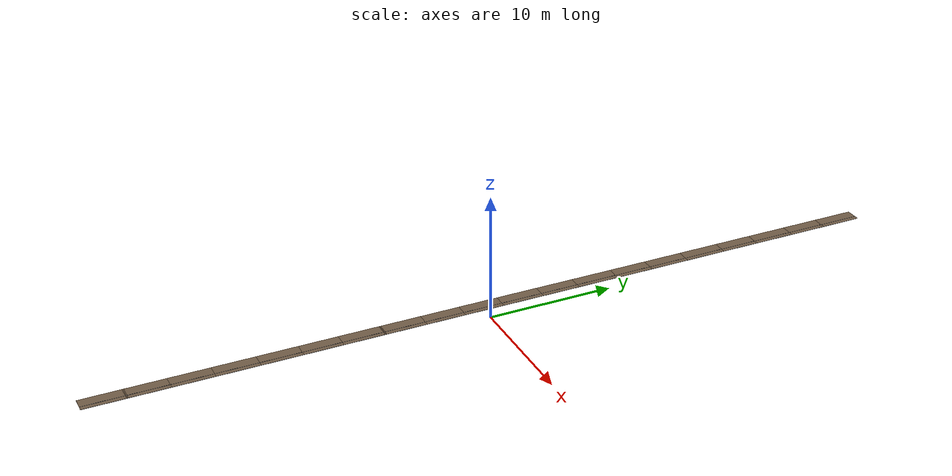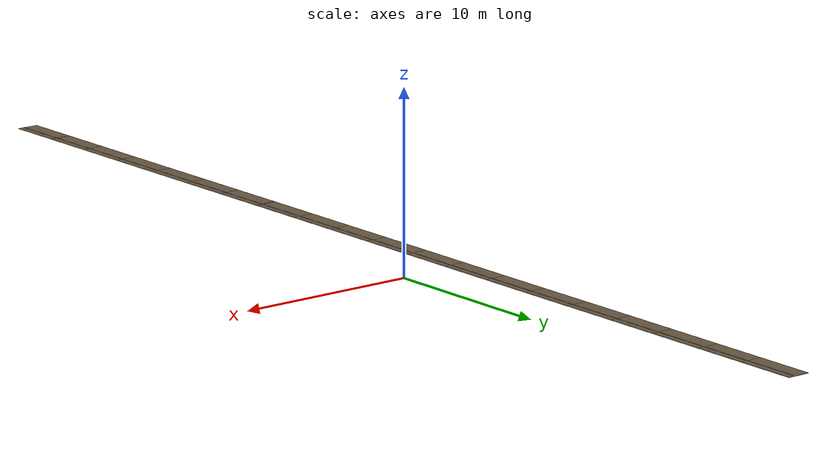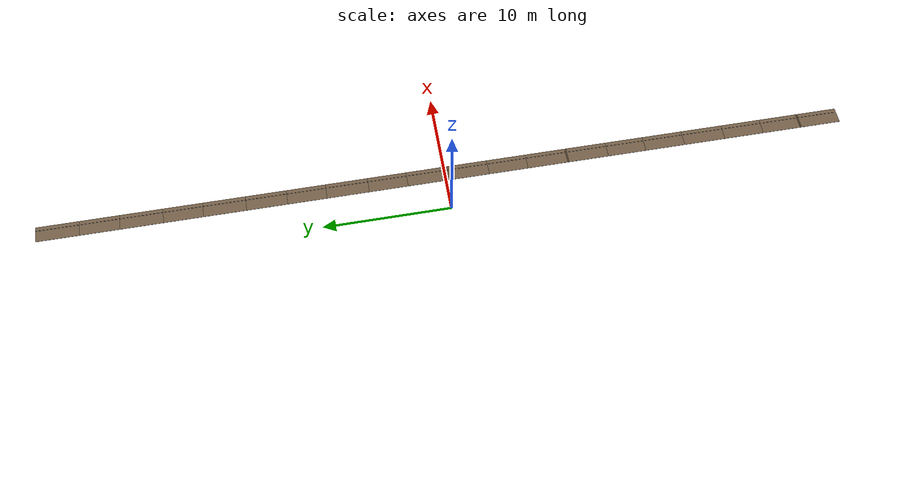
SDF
<sdf version="1.9">
 <world name="orchard_10x41">
  <model name="understory_r5">
   <static>true</static>
   <link name="link">
    <visual name="soil_1">
     <pose>1.750 -29.450 2.333 0.0001 0.0000 0.0000</pose>
     <geometry><box><size>1.2000 3.2240 0.0300</size></box></geometry>
     <material>
      <ambient>0.400 0.330 0.250 1</ambient>
      <diffuse>0.440 0.363 0.275 1</diffuse>
      <specular>0.120 0.099 0.075 1</specular>
     </material>
     <plugin filename="gz-sim-label-system" name="gz::sim::systems::Label"><label>66</label></plugin>
    </visual>
    <visual name="soil_2">
     <pose>1.750 -26.350 2.333 -0.0001 0.0000 0.0000</pose>
     <geometry><box><size>1.2000 3.2240 0.0300</size></box></geometry>
     <material>
      <ambient>0.400 0.330 0.250 1</ambient>
      <diffuse>0.440 0.363 0.275 1</diffuse>
      <specular>0.120 0.099 0.075 1</specular>
     </material>
     <plugin filename="gz-sim-label-system" name="gz::sim::systems::Label"><label>66</label></plugin>
    </visual>
    <visual name="soil_3">
     <pose>1.750 -23.250 2.333 -0.0002 0.0000 0.0000</pose>
     <geometry><box><size>1.2000 3.2240 0.0300</size></box></geometry>
     <material>
      <ambient>0.400 0.330 0.250 1</ambient>
      <diffuse>0.440 0.363 0.275 1</diffuse>
      <specular>0.120 0.099 0.075 1</specular>
     </material>
     <plugin filename="gz-sim-label-system" name="gz::sim::systems::Label"><label>66</label></plugin>
    </visual>
    <visual name="soil_4">
     <pose>1.750 -20.150 2.333 -0.0000 0.0000 0.0000</pose>
     <geometry><box><size>1.2000 3.2240 0.0300</size></box></geometry>
     <material>
      <ambient>0.400 0.330 0.250 1</ambient>
      <diffuse>0.440 0.363 0.275 1</diffuse>
      <specular>0.120 0.099 0.075 1</specular>
     </material>
     <plugin filename="gz-sim-label-system" name="gz::sim::systems::Label"><label>66</label></plugin>
    </visual>
    <visual name="soil_5">
     <pose>1.750 -17.050 2.333 0.0001 0.0000 0.0000</pose>
     <geometry><box><size>1.2000 3.2240 0.0300</size></box></geometry>
     <material>
      <ambient>0.400 0.330 0.250 1</ambient>
      <diffuse>0.440 0.363 0.275 1</diffuse>
      <specular>0.120 0.099 0.075 1</specular>
     </material>
     <plugin filename="gz-sim-label-system" name="gz::sim::systems::Label"><label>66</label></plugin>
    </visual>
    <visual name="soil_6">
     <pose>1.750 -13.950 2.334 0.0008 0.0000 0.0000</pose>
     <geometry><box><size>1.2000 3.2240 0.0300</size></box></geometry>
     <material>
      <ambient>0.400 0.330 0.250 1</ambient>
      <diffuse>0.440 0.363 0.275 1</diffuse>
      <specular>0.120 0.099 0.075 1</specular>
     </material>
     <plugin filename="gz-sim-label-system" name="gz::sim::systems::Label"><label>66</label></plugin>
    </visual>
    <visual name="soil_7">
     <pose>1.750 -10.850 2.336 0.0004 0.0000 0.0000</pose>
     <geometry><box><size>1.2000 3.2240 0.0300</size></box></geometry>
     <material>
      <ambient>0.400 0.330 0.250 1</ambient>
      <diffuse>0.440 0.363 0.275 1</diffuse>
      <specular>0.120 0.099 0.075 1</specular>
     </material>
     <plugin filename="gz-sim-label-system" name="gz::sim::systems::Label"><label>66</label></plugin>
    </visual>
    <visual name="soil_8">
     <pose>1.750 -7.750 2.336 -0.0004 0.0000 0.0000</pose>
     <geometry><box><size>1.2000 3.2240 0.0300</size></box></geometry>
     <material>
      <ambient>0.400 0.330 0.250 1</ambient>
      <diffuse>0.440 0.363 0.275 1</diffuse>
      <specular>0.120 0.099 0.075 1</specular>
     </material>
     <plugin filename="gz-sim-label-system" name="gz::sim::systems::Label"><label>66</label></plugin>
    </visual>
    <visual name="soil_9">
     <pose>1.750 -4.650 2.335 -0.0002 0.0000 0.0000</pose>
     <geometry><box><size>1.2000 3.2240 0.0300</size></box></geometry>
     <material>
      <ambient>0.400 0.330 0.250 1</ambient>
      <diffuse>0.440 0.363 0.275 1</diffuse>
      <specular>0.120 0.099 0.075 1</specular>
     </material>
     <plugin filename="gz-sim-label-system" name="gz::sim::systems::Label"><label>66</label></plugin>
    </visual>
    <visual name="soil_10">
     <pose>1.750 -1.550 2.335 0.0002 0.0000 0.0000</pose>
     <geometry><box><size>1.2000 3.2240 0.0300</size></box></geometry>
     <material>
      <ambient>0.400 0.330 0.250 1</ambient>
      <diffuse>0.440 0.363 0.275 1</diffuse>
      <specular>0.120 0.099 0.075 1</specular>
     </material>
     <plugin filename="gz-sim-label-system" name="gz::sim::systems::Label"><label>66</label></plugin>
    </visual>
    <visual name="soil_11">
     <pose>1.750 1.550 2.334 -0.0010 0.0000 0.0000</pose>
     <geometry><box><size>1.2000 3.2240 0.0300</size></box></geometry>
     <material>
      <ambient>0.400 0.330 0.250 1</ambient>
      <diffuse>0.440 0.363 0.275 1</diffuse>
      <specular>0.120 0.099 0.075 1</specular>
     </material>
     <plugin filename="gz-sim-label-system" name="gz::sim::systems::Label"><label>66</label></plugin>
    </visual>
    <visual name="soil_12">
     <pose>1.750 4.650 2.330 -0.0012 0.0000 0.0000</pose>
     <geometry><box><size>1.2000 3.2240 0.0300</size></box></geometry>
     <material>
      <ambient>0.400 0.330 0.250 1</ambient>
      <diffuse>0.440 0.363 0.275 1</diffuse>
      <specular>0.120 0.099 0.075 1</specular>
     </material>
     <plugin filename="gz-sim-label-system" name="gz::sim::systems::Label"><label>66</label></plugin>
    </visual>
    <visual name="soil_13">
     <pose>1.750 7.750 2.327 -0.0008 0.0000 0.0000</pose>
     <geometry><box><size>1.2000 3.2240 0.0300</size></box></geometry>
     <material>
      <ambient>0.400 0.330 0.250 1</ambient>
      <diffuse>0.440 0.363 0.275 1</diffuse>
      <specular>0.120 0.099 0.075 1</specular>
     </material>
     <plugin filename="gz-sim-label-system" name="gz::sim::systems::Label"><label>66</label></plugin>
    </visual>
    <visual name="soil_14">
     <pose>1.750 10.850 2.325 -0.0004 0.0000 0.0000</pose>
     <geometry><box><size>1.2000 3.2240 0.0300</size></box></geometry>
     <material>
      <ambient>0.400 0.330 0.250 1</ambient>
      <diffuse>0.440 0.363 0.275 1</diffuse>
      <specular>0.120 0.099 0.075 1</specular>
     </material>
     <plugin filename="gz-sim-label-system" name="gz::sim::systems::Label"><label>66</label></plugin>
    </visual>
    <visual name="soil_15">
     <pose>1.750 13.950 2.325 0.0002 0.0000 0.0000</pose>
     <geometry><box><size>1.2000 3.2240 0.0300</size></box></geometry>
     <material>
      <ambient>0.400 0.330 0.250 1</ambient>
      <diffuse>0.440 0.363 0.275 1</diffuse>
      <specular>0.120 0.099 0.075 1</specular>
     </material>
     <plugin filename="gz-sim-label-system" name="gz::sim::systems::Label"><label>66</label></plugin>
    </visual>
    <visual name="soil_16">
     <pose>1.750 17.050 2.327 0.0008 0.0000 0.0000</pose>
     <geometry><box><size>1.2000 3.2240 0.0300</size></box></geometry>
     <material>
      <ambient>0.400 0.330 0.250 1</ambient>
      <diffuse>0.440 0.363 0.275 1</diffuse>
      <specular>0.120 0.099 0.075 1</specular>
     </material>
     <plugin filename="gz-sim-label-system" name="gz::sim::systems::Label"><label>66</label></plugin>
    </visual>
    <visual name="soil_17">
     <pose>1.750 20.150 2.328 0.0001 0.0000 0.0000</pose>
     <geometry><box><size>1.2000 3.2240 0.0300</size></box></geometry>
     <material>
      <ambient>0.400 0.330 0.250 1</ambient>
      <diffuse>0.440 0.363 0.275 1</diffuse>
      <specular>0.120 0.099 0.075 1</specular>
     </material>
     <plugin filename="gz-sim-label-system" name="gz::sim::systems::Label"><label>66</label></plugin>
    </visual>
    <visual name="soil_18">
     <pose>1.750 23.250 2.328 -0.0002 0.0000 0.0000</pose>
     <geometry><box><size>1.2000 3.2240 0.0300</size></box></geometry>
     <material>
      <ambient>0.400 0.330 0.250 1</ambient>
      <diffuse>0.440 0.363 0.275 1</diffuse>
      <specular>0.120 0.099 0.075 1</specular>
     </material>
     <plugin filename="gz-sim-label-system" name="gz::sim::systems::Label"><label>66</label></plugin>
    </visual>
    <visual name="soil_19">
     <pose>1.750 26.350 2.328 0.0003 0.0000 0.0000</pose>
     <geometry><box><size>1.2000 3.2240 0.0300</size></box></geometry>
     <material>
      <ambient>0.400 0.330 0.250 1</ambient>
      <diffuse>0.440 0.363 0.275 1</diffuse>
      <specular>0.120 0.099 0.075 1</specular>
     </material>
     <plugin filename="gz-sim-label-system" name="gz::sim::systems::Label"><label>66</label></plugin>
    </visual>
    <visual name="soil_20">
     <pose>1.750 29.450 2.329 0.0003 0.0000 0.0000</pose>
     <geometry><box><size>1.2000 3.2240 0.0300</size></box></geometry>
     <material>
      <ambient>0.400 0.330 0.250 1</ambient>
      <diffuse>0.440 0.363 0.275 1</diffuse>
      <specular>0.120 0.099 0.075 1</specular>
     </material>
     <plugin filename="gz-sim-label-system" name="gz::sim::systems::Label"><label>66</label></plugin>
    </visual>
    <visual name="drip_21">
     <pose>2.030 -29.450 2.363 1.5709 0.0000 0.0000</pose>
     <geometry><cylinder><radius>0.0110</radius><length>3.1620</length></cylinder></geometry>
     <material>
      <ambient>0.100 0.100 0.110 1</ambient>
      <diffuse>0.110 0.110 0.121 1</diffuse>
      <specular>0.030 0.030 0.033 1</specular>
     </material>
     <plugin filename="gz-sim-label-system" name="gz::sim::systems::Label"><label>67</label></plugin>
    </visual>
    <visual name="drip_22">
     <pose>2.030 -26.350 2.363 1.5707 0.0000 0.0000</pose>
     <geometry><cylinder><radius>0.0110</radius><length>3.1620</length></cylinder></geometry>
     <material>
      <ambient>0.100 0.100 0.110 1</ambient>
      <diffuse>0.110 0.110 0.121 1</diffuse>
      <specular>0.030 0.030 0.033 1</specular>
     </material>
     <plugin filename="gz-sim-label-system" name="gz::sim::systems::Label"><label>67</label></plugin>
    </visual>
    <visual name="drip_23">
     <pose>2.030 -23.250 2.363 1.5706 0.0000 0.0000</pose>
     <geometry><cylinder><radius>0.0110</radius><length>3.1620</length></cylinder></geometry>
     <material>
      <ambient>0.100 0.100 0.110 1</ambient>
      <diffuse>0.110 0.110 0.121 1</diffuse>
      <specular>0.030 0.030 0.033 1</specular>
     </material>
     <plugin filename="gz-sim-label-system" name="gz::sim::systems::Label"><label>67</label></plugin>
    </visual>
    <visual name="drip_24">
     <pose>2.030 -20.150 2.363 1.5708 0.0000 0.0000</pose>
     <geometry><cylinder><radius>0.0110</radius><length>3.1620</length></cylinder></geometry>
     <material>
      <ambient>0.100 0.100 0.110 1</ambient>
      <diffuse>0.110 0.110 0.121 1</diffuse>
      <specular>0.030 0.030 0.033 1</specular>
     </material>
     <plugin filename="gz-sim-label-system" name="gz::sim::systems::Label"><label>67</label></plugin>
    </visual>
    <visual name="drip_25">
     <pose>2.030 -17.050 2.363 1.5709 0.0000 0.0000</pose>
     <geometry><cylinder><radius>0.0110</radius><length>3.1620</length></cylinder></geometry>
     <material>
      <ambient>0.100 0.100 0.110 1</ambient>
      <diffuse>0.110 0.110 0.121 1</diffuse>
      <specular>0.030 0.030 0.033 1</specular>
     </material>
     <plugin filename="gz-sim-label-system" name="gz::sim::systems::Label"><label>67</label></plugin>
    </visual>
    <visual name="drip_26">
     <pose>2.030 -13.950 2.364 1.5716 0.0000 0.0000</pose>
     <geometry><cylinder><radius>0.0110</radius><length>3.1620</length></cylinder></geometry>
     <material>
      <ambient>0.100 0.100 0.110 1</ambient>
      <diffuse>0.110 0.110 0.121 1</diffuse>
      <specular>0.030 0.030 0.033 1</specular>
     </material>
     <plugin filename="gz-sim-label-system" name="gz::sim::systems::Label"><label>67</label></plugin>
    </visual>
    <visual name="drip_27">
     <pose>2.030 -10.850 2.366 1.5712 0.0000 0.0000</pose>
     <geometry><cylinder><radius>0.0110</radius><length>3.1620</length></cylinder></geometry>
     <material>
      <ambient>0.100 0.100 0.110 1</ambient>
      <diffuse>0.110 0.110 0.121 1</diffuse>
      <specular>0.030 0.030 0.033 1</specular>
     </material>
     <plugin filename="gz-sim-label-system" name="gz::sim::systems::Label"><label>67</label></plugin>
    </visual>
    <visual name="drip_28">
     <pose>2.030 -7.750 2.366 1.5704 0.0000 0.0000</pose>
     <geometry><cylinder><radius>0.0110</radius><length>3.1620</length></cylinder></geometry>
     <material>
      <ambient>0.100 0.100 0.110 1</ambient>
      <diffuse>0.110 0.110 0.121 1</diffuse>
      <specular>0.030 0.030 0.033 1</specular>
     </material>
     <plugin filename="gz-sim-label-system" name="gz::sim::systems::Label"><label>67</label></plugin>
    </visual>
    <visual name="drip_29">
     <pose>2.030 -4.650 2.365 1.5706 0.0000 0.0000</pose>
     <geometry><cylinder><radius>0.0110</radius><length>3.1620</length></cylinder></geometry>
     <material>
      <ambient>0.100 0.100 0.110 1</ambient>
      <diffuse>0.110 0.110 0.121 1</diffuse>
      <specular>0.030 0.030 0.033 1</specular>
     </material>
     <plugin filename="gz-sim-label-system" name="gz::sim::systems::Label"><label>67</label></plugin>
    </visual>
    <visual name="drip_30">
     <pose>2.030 -1.550 2.365 1.5710 0.0000 0.0000</pose>
     <geometry><cylinder><radius>0.0110</radius><length>3.1620</length></cylinder></geometry>
     <material>
      <ambient>0.100 0.100 0.110 1</ambient>
      <diffuse>0.110 0.110 0.121 1</diffuse>
      <specular>0.030 0.030 0.033 1</specular>
     </material>
     <plugin filename="gz-sim-label-system" name="gz::sim::systems::Label"><label>67</label></plugin>
    </visual>
    <visual name="drip_31">
     <pose>2.030 1.550 2.364 1.5698 0.0000 0.0000</pose>
     <geometry><cylinder><radius>0.0110</radius><length>3.1620</length></cylinder></geometry>
     <material>
      <ambient>0.100 0.100 0.110 1</ambient>
      <diffuse>0.110 0.110 0.121 1</diffuse>
      <specular>0.030 0.030 0.033 1</specular>
     </material>
     <plugin filename="gz-sim-label-system" name="gz::sim::systems::Label"><label>67</label></plugin>
    </visual>
    <visual name="drip_32">
     <pose>2.030 4.650 2.360 1.5696 0.0000 0.0000</pose>
     <geometry><cylinder><radius>0.0110</radius><length>3.1620</length></cylinder></geometry>
     <material>
      <ambient>0.100 0.100 0.110 1</ambient>
      <diffuse>0.110 0.110 0.121 1</diffuse>
      <specular>0.030 0.030 0.033 1</specular>
     </material>
     <plugin filename="gz-sim-label-system" name="gz::sim::systems::Label"><label>67</label></plugin>
    </visual>
    <visual name="drip_33">
     <pose>2.030 7.750 2.357 1.5700 0.0000 0.0000</pose>
     <geometry><cylinder><radius>0.0110</radius><length>3.1620</length></cylinder></geometry>
     <material>
      <ambient>0.100 0.100 0.110 1</ambient>
      <diffuse>0.110 0.110 0.121 1</diffuse>
      <specular>0.030 0.030 0.033 1</specular>
     </material>
     <plugin filename="gz-sim-label-system" name="gz::sim::systems::Label"><label>67</label></plugin>
    </visual>
    <visual name="drip_34">
     <pose>2.030 10.850 2.355 1.5704 0.0000 0.0000</pose>
     <geometry><cylinder><radius>0.0110</radius><length>3.1620</length></cylinder></geometry>
     <material>
      <ambient>0.100 0.100 0.110 1</ambient>
      <diffuse>0.110 0.110 0.121 1</diffuse>
      <specular>0.030 0.030 0.033 1</specular>
     </material>
     <plugin filename="gz-sim-label-system" name="gz::sim::systems::Label"><label>67</label></plugin>
    </visual>
    <visual name="drip_35">
     <pose>2.030 13.950 2.355 1.5710 0.0000 0.0000</pose>
     <geometry><cylinder><radius>0.0110</radius><length>3.1620</length></cylinder></geometry>
     <material>
      <ambient>0.100 0.100 0.110 1</ambient>
      <diffuse>0.110 0.110 0.121 1</diffuse>
      <specular>0.030 0.030 0.033 1</specular>
     </material>
     <plugin filename="gz-sim-label-system" name="gz::sim::systems::Label"><label>67</label></plugin>
    </visual>
    <visual name="drip_36">
     <pose>2.030 17.050 2.357 1.5716 0.0000 0.0000</pose>
     <geometry><cylinder><radius>0.0110</radius><length>3.1620</length></cylinder></geometry>
     <material>
      <ambient>0.100 0.100 0.110 1</ambient>
      <diffuse>0.110 0.110 0.121 1</diffuse>
      <specular>0.030 0.030 0.033 1</specular>
     </material>
     <plugin filename="gz-sim-label-system" name="gz::sim::systems::Label"><label>67</label></plugin>
    </visual>
    <visual name="drip_37">
     <pose>2.030 20.150 2.358 1.5709 0.0000 0.0000</pose>
     <geometry><cylinder><radius>0.0110</radius><length>3.1620</length></cylinder></geometry>
     <material>
      <ambient>0.100 0.100 0.110 1</ambient>
      <diffuse>0.110 0.110 0.121 1</diffuse>
      <specular>0.030 0.030 0.033 1</specular>
     </material>
     <plugin filename="gz-sim-label-system" name="gz::sim::systems::Label"><label>67</label></plugin>
    </visual>
    <visual name="drip_38">
     <pose>2.030 23.250 2.358 1.5706 0.0000 0.0000</pose>
     <geometry><cylinder><radius>0.0110</radius><length>3.1620</length></cylinder></geometry>
     <material>
      <ambient>0.100 0.100 0.110 1</ambient>
      <diffuse>0.110 0.110 0.121 1</diffuse>
      <specular>0.030 0.030 0.033 1</specular>
     </material>
     <plugin filename="gz-sim-label-system" name="gz::sim::systems::Label"><label>67</label></plugin>
    </visual>
    <visual name="drip_39">
     <pose>2.030 26.350 2.358 1.5711 0.0000 0.0000</pose>
     <geometry><cylinder><radius>0.0110</radius><length>3.1620</length></cylinder></geometry>
     <material>
      <ambient>0.100 0.100 0.110 1</ambient>
      <diffuse>0.110 0.110 0.121 1</diffuse>
      <specular>0.030 0.030 0.033 1</specular>
     </material>
     <plugin filename="gz-sim-label-system" name="gz::sim::systems::Label"><label>67</label></plugin>
    </visual>
    <visual name="drip_40">
     <pose>2.030 29.450 2.359 1.5711 0.0000 0.0000</pose>
     <geometry><cylinder><radius>0.0110</radius><length>3.1620</length></cylinder></geometry>
     <material>
      <ambient>0.100 0.100 0.110 1</ambient>
      <diffuse>0.110 0.110 0.121 1</diffuse>
      <specular>0.030 0.030 0.033 1</specular>
     </material>
     <plugin filename="gz-sim-label-system" name="gz::sim::systems::Label"><label>67</label></plugin>
    </visual>
   </link>
  </model>
 </world>
</sdf>
